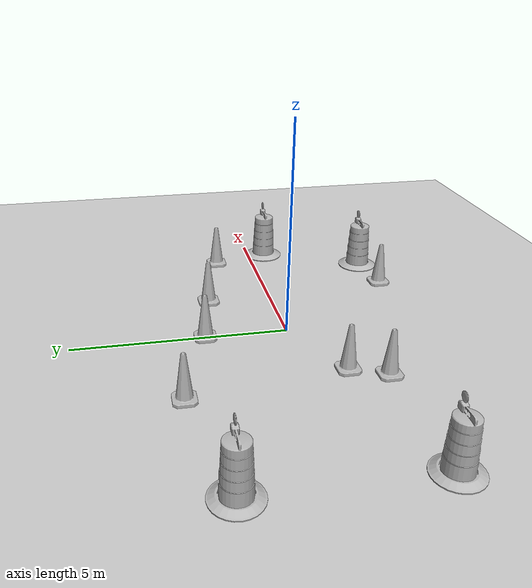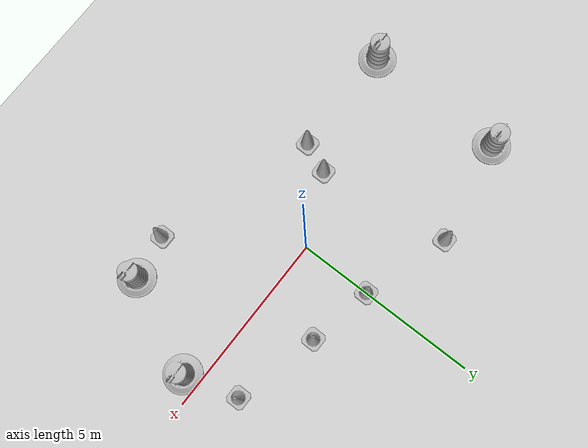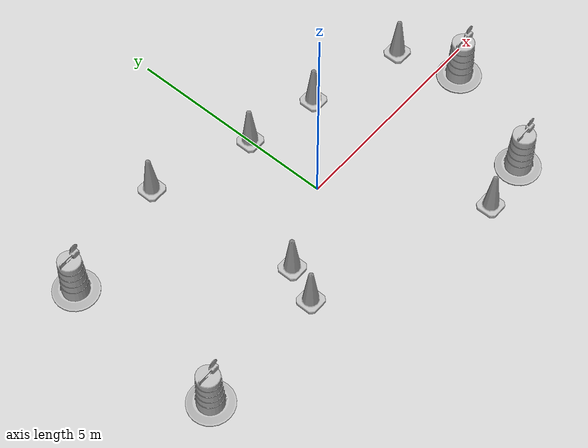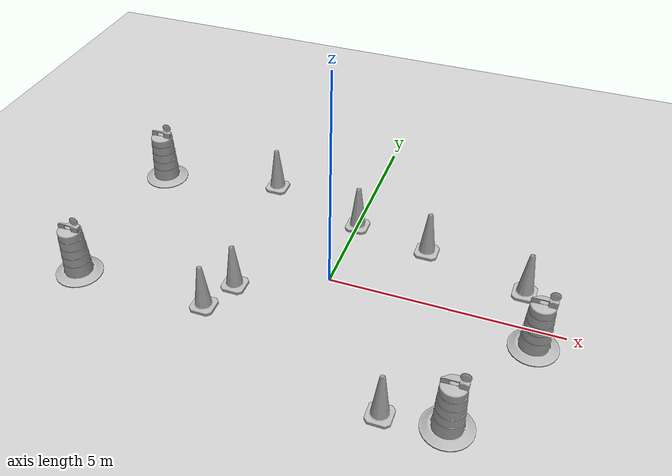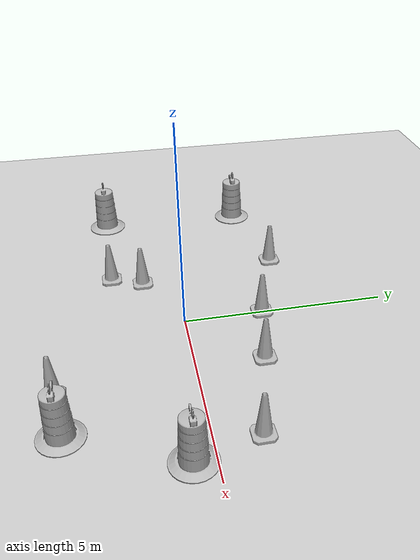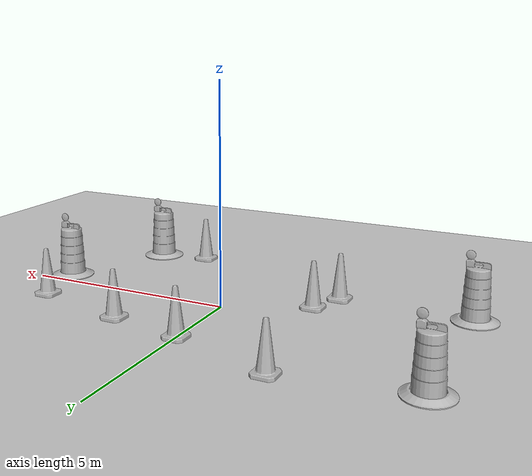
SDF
<sdf version="1.7">
 <world name="default">
  <light name="sun" type="directional">
   <pose>0 0 10 0 -0 0</pose>
   <diffuse>0.8 0.8 0.8 1</diffuse>
   <specular>0.2 0.2 0.2 1</specular>
   <attenuation>
    <range>1000</range>
    <constant>0.9</constant>
    <linear>0.01</linear>
    <quadratic>0.001</quadratic>
   </attenuation>
   <direction>-0.5 0.1 -0.9</direction>
   <spot><inner_angle>0</inner_angle><outer_angle>0</outer_angle><falloff>0</falloff></spot>
  </light>
  <model name="ground_plane">
   <static>1</static>
   <link name="link">
    <collision name="collision">
     <geometry><plane><normal>0 0 1</normal><size>100 100</size></plane></geometry>
     <surface><friction><ode><mu>100</mu><mu2>50</mu2></ode></friction></surface>
    </collision>
    <visual name="visual">
     <cast_shadows>0</cast_shadows>
     <geometry><plane><normal>0 0 1</normal><size>100 100</size></plane></geometry>
     <material>
      <script><uri>file://media/materials/scripts/gazebo.material</uri><name>Gazebo/Grey</name></script>
     </material>
    </visual>
   </link>
  </model>
  <gravity>0 0 -9.8</gravity>
  <magnetic_field>6e-06 2.3e-05 -4.2e-05</magnetic_field>
  <atmosphere type="adiabatic"/>
  <physics type="ode">
   <max_step_size>0.001</max_step_size>
   <real_time_factor>1</real_time_factor>
   <real_time_update_rate>1000</real_time_update_rate>
  </physics>
  <scene><ambient>0.4 0.4 0.4 1</ambient><background>0.7 0.7 0.7 1</background><shadows>1</shadows></scene>
  <audio><device>default</device></audio>
  <spherical_coordinates>
   <surface_model>EARTH_WGS84</surface_model>
   <latitude_deg>0</latitude_deg>
   <longitude_deg>0</longitude_deg>
   <elevation>0</elevation>
   <heading_deg>0</heading_deg>
  </spherical_coordinates>
  <model name="Construction Cone">
   <link name="link">
    <collision name="collision">
     <geometry>
      <mesh><scale>10 10 10</scale><uri>model://construction_cone/meshes/construction_cone.dae</uri></mesh>
     </geometry>
    </collision>
    <visual name="visual">
     <geometry>
      <mesh><scale>10 10 10</scale><uri>model://construction_cone/meshes/construction_cone.dae</uri></mesh>
     </geometry>
    </visual>
    <inertial>
     <inertia><ixx>1</ixx><ixy>0</ixy><ixz>0</ixz><iyy>1</iyy><iyz>0</iyz><izz>1</izz></inertia>
     <mass>1</mass>
    </inertial>
   </link>
   <pose>0.00429 1.92166 -0 0 -0 0</pose>
  </model>
  <model name="Construction Cone_0">
   <link name="link">
    <collision name="collision">
     <geometry>
      <mesh><scale>10 10 10</scale><uri>model://construction_cone/meshes/construction_cone.dae</uri></mesh>
     </geometry>
    </collision>
    <visual name="visual">
     <geometry>
      <mesh><scale>10 10 10</scale><uri>model://construction_cone/meshes/construction_cone.dae</uri></mesh>
     </geometry>
    </visual>
    <inertial>
     <inertia><ixx>1</ixx><ixy>0</ixy><ixz>0</ixz><iyy>1</iyy><iyz>0</iyz><izz>1</izz></inertia>
     <mass>1</mass>
    </inertial>
   </link>
   <pose>1.73818 1.58001 -0 0 -0 0</pose>
  </model>
  <model name="Construction Cone_1">
   <link name="link">
    <collision name="collision">
     <geometry>
      <mesh><scale>10 10 10</scale><uri>model://construction_cone/meshes/construction_cone.dae</uri></mesh>
     </geometry>
    </collision>
    <visual name="visual">
     <geometry>
      <mesh><scale>10 10 10</scale><uri>model://construction_cone/meshes/construction_cone.dae</uri></mesh>
     </geometry>
    </visual>
    <inertial>
     <inertia><ixx>1</ixx><ixy>0</ixy><ixz>0</ixz><iyy>1</iyy><iyz>0</iyz><izz>1</izz></inertia>
     <mass>1</mass>
    </inertial>
   </link>
   <pose>4 1 -9e-06 0 -0 0</pose>
  </model>
  <model name="Construction Cone_2">
   <link name="link">
    <collision name="collision">
     <geometry>
      <mesh><scale>10 10 10</scale><uri>model://construction_cone/meshes/construction_cone.dae</uri></mesh>
     </geometry>
    </collision>
    <visual name="visual">
     <geometry>
      <mesh><scale>10 10 10</scale><uri>model://construction_cone/meshes/construction_cone.dae</uri></mesh>
     </geometry>
    </visual>
    <inertial>
     <inertia><ixx>1</ixx><ixy>0</ixy><ixz>0</ixz><iyy>1</iyy><iyz>0</iyz><izz>1</izz></inertia>
     <mass>1</mass>
    </inertial>
   </link>
   <pose>-1.83581 -0.863451 -0 0 -1e-06 0</pose>
  </model>
  <model name="Construction Cone_3">
   <link name="link">
    <collision name="collision">
     <geometry>
      <mesh><scale>10 10 10</scale><uri>model://construction_cone/meshes/construction_cone.dae</uri></mesh>
     </geometry>
    </collision>
    <visual name="visual">
     <geometry>
      <mesh><scale>10 10 10</scale><uri>model://construction_cone/meshes/construction_cone.dae</uri></mesh>
     </geometry>
    </visual>
    <inertial>
     <inertia><ixx>1</ixx><ixy>0</ixy><ixz>0</ixz><iyy>1</iyy><iyz>0</iyz><izz>1</izz></inertia>
     <mass>1</mass>
    </inertial>
   </link>
   <pose>-2.17697 -1.65409 -0 1e-06 -1e-06 0</pose>
  </model>
  <model name="Construction Barrel">
   <link name="link">
    <inertial>
     <pose>0 0 0.4 0 -0 0</pose>
     <mass>500</mass>
     <inertia><ixx>51.2096</ixx><iyy>51.2096</iyy><izz>25</izz><ixy>0</ixy><ixz>0</ixz><iyz>0</iyz></inertia>
    </inertial>
    <collision name="collision">
     <geometry><mesh><uri>model://construction_barrel/meshes/construction_barrel.dae</uri></mesh></geometry>
    </collision>
    <visual name="visual">
     <geometry><mesh><uri>model://construction_barrel/meshes/construction_barrel.dae</uri></mesh></geometry>
    </visual>
   </link>
   <pose>3.26208 -2.91555 -6e-06 0 -1.3e-05 -1.3e-05</pose>
  </model>
  <model name="Construction Cone_4">
   <link name="link">
    <collision name="collision">
     <geometry>
      <mesh><scale>10 10 10</scale><uri>model://construction_cone/meshes/construction_cone.dae</uri></mesh>
     </geometry>
    </collision>
    <visual name="visual">
     <geometry>
      <mesh><scale>10 10 10</scale><uri>model://construction_cone/meshes/construction_cone.dae</uri></mesh>
     </geometry>
    </visual>
    <inertial>
     <inertia><ixx>1</ixx><ixy>0</ixy><ixz>0</ixz><iyy>1</iyy><iyz>0</iyz><izz>1</izz></inertia>
     <mass>1</mass>
    </inertial>
   </link>
   <pose>2.05505 -3.076 -0 0 -1e-06 0</pose>
  </model>
  <model name="Construction Barrel_0">
   <link name="link">
    <inertial>
     <pose>0 0 0.4 0 -0 0</pose>
     <mass>500</mass>
     <inertia><ixx>51.2096</ixx><iyy>51.2096</iyy><izz>25</izz><ixy>0</ixy><ixz>0</ixz><iyz>0</iyz></inertia>
    </inertial>
    <collision name="collision">
     <geometry><mesh><uri>model://construction_barrel/meshes/construction_barrel.dae</uri></mesh></geometry>
    </collision>
    <visual name="visual">
     <geometry><mesh><uri>model://construction_barrel/meshes/construction_barrel.dae</uri></mesh></geometry>
    </visual>
   </link>
   <pose>4.40568 -0.450804 -1e-06 3e-06 7e-06 -9e-06</pose>
  </model>
  <model name="Construction Barrel_1">
   <link name="link">
    <inertial>
     <pose>0 0 0.4 0 -0 0</pose>
     <mass>500</mass>
     <inertia><ixx>51.2096</ixx><iyy>51.2096</iyy><izz>25</izz><ixy>0</ixy><ixz>0</ixz><iyz>0</iyz></inertia>
    </inertial>
    <collision name="collision">
     <geometry><mesh><uri>model://construction_barrel/meshes/construction_barrel.dae</uri></mesh></geometry>
    </collision>
    <visual name="visual">
     <geometry><mesh><uri>model://construction_barrel/meshes/construction_barrel.dae</uri></mesh></geometry>
    </visual>
   </link>
   <pose>-5.09607 2.1789 -3e-06 -4e-06 -5e-06 -8e-06</pose>
  </model>
  <model name="Construction Barrel_2">
   <link name="link">
    <inertial>
     <pose>0 0 0.4 0 -0 0</pose>
     <mass>500</mass>
     <inertia><ixx>51.2096</ixx><iyy>51.2096</iyy><izz>25</izz><ixy>0</ixy><ixz>0</ixz><iyz>0</iyz></inertia>
    </inertial>
    <collision name="collision">
     <geometry><mesh><uri>model://construction_barrel/meshes/construction_barrel.dae</uri></mesh></geometry>
    </collision>
    <visual name="visual">
     <geometry><mesh><uri>model://construction_barrel/meshes/construction_barrel.dae</uri></mesh></geometry>
    </visual>
   </link>
   <pose>-5.18391 -1.63099 -1e-06 -0 4e-06 -7e-06</pose>
  </model>
  <model name="Construction Cone_5">
   <link name="link">
    <collision name="collision">
     <geometry>
      <mesh><scale>10 10 10</scale><uri>model://construction_cone/meshes/construction_cone.dae</uri></mesh>
     </geometry>
    </collision>
    <visual name="visual">
     <geometry>
      <mesh><scale>10 10 10</scale><uri>model://construction_cone/meshes/construction_cone.dae</uri></mesh>
     </geometry>
    </visual>
    <inertial>
     <inertia><ixx>1</ixx><ixy>0</ixy><ixz>0</ixz><iyy>1</iyy><iyz>0</iyz><izz>1</izz></inertia>
     <mass>1</mass>
    </inertial>
   </link>
   <pose>-2.30763 2.68487 -0 0 -0 0</pose>
  </model>
 </world>
</sdf>
